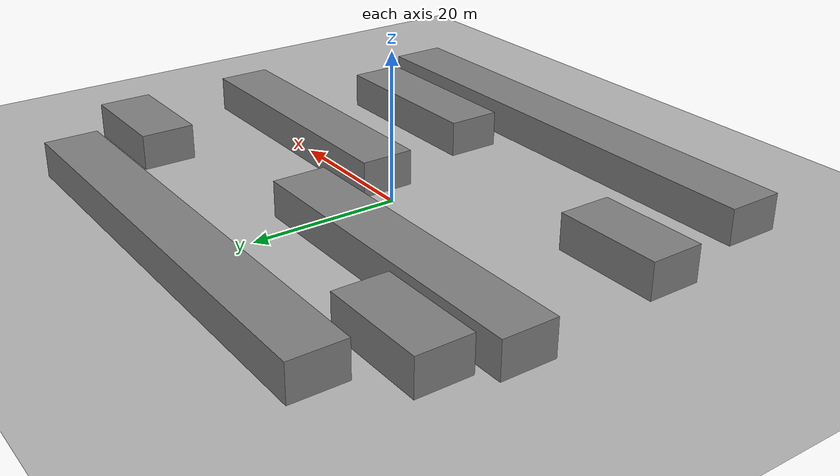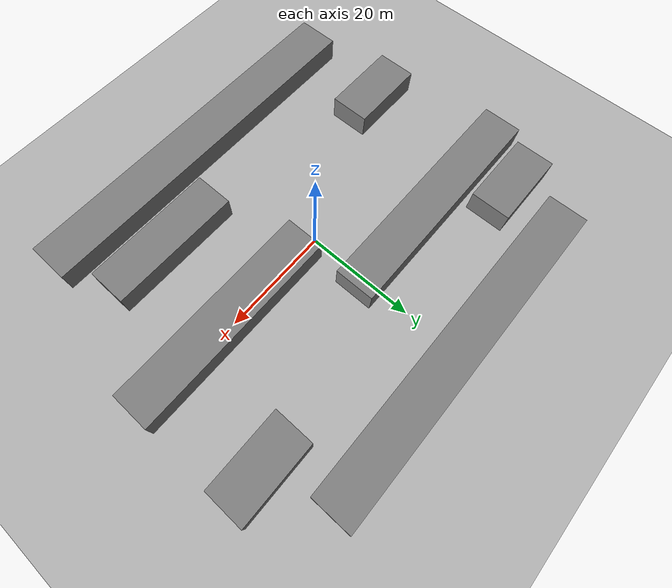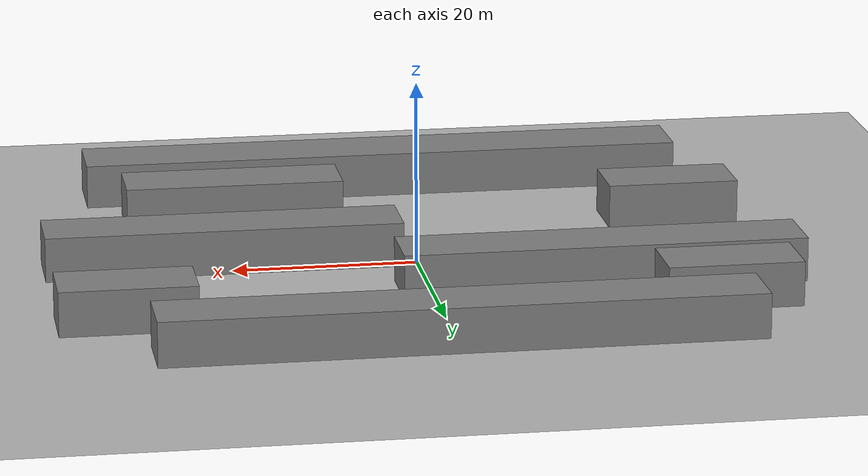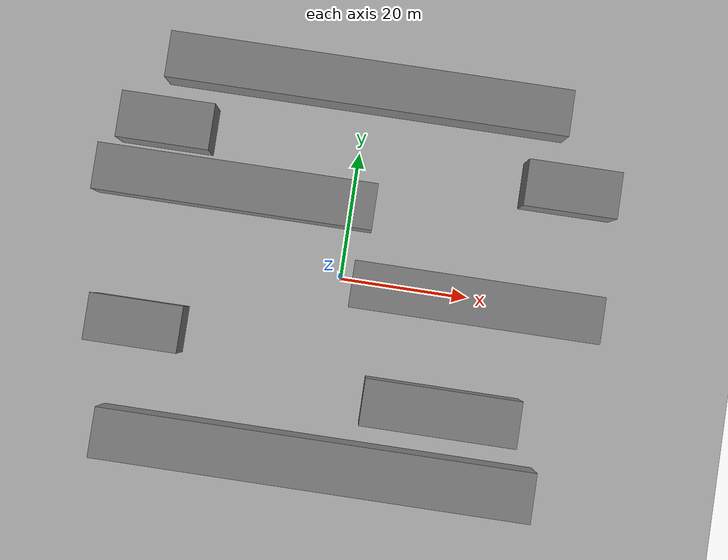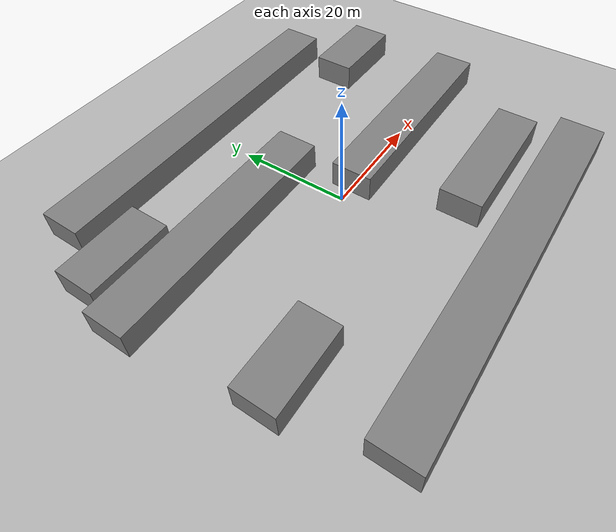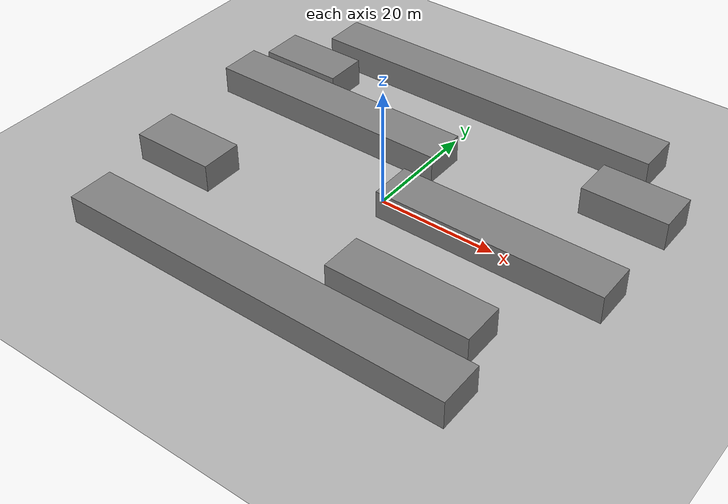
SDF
<?xml version="1.0" ?>
<sdf version='1.7'>
  <world name='default'>
    <light name='sun' type='directional'>
      <cast_shadows>1</cast_shadows>
      <pose>0 0 30 0 0 0</pose>
      <diffuse>0.8 0.8 0.8 1</diffuse>
      <specular>0.2 0.2 0.2 1</specular>
      <attenuation>
        <range>1000</range>
        <constant>0.9</constant>
        <linear>0.01</linear>
        <quadratic>0.001</quadratic>
      </attenuation>
      <direction>-0.5 0.1 -0.9</direction>
    </light>

    <model name='ground_plane'>
      <static>1</static>
      <link name='link'>
        <collision name='collision'>
          <geometry><plane><normal>0 0 1</normal><size>500 500</size></plane></geometry>
        </collision>
        <visual name='visual'>
          <cast_shadows>0</cast_shadows>
          <geometry><plane><normal>0 0 1</normal><size>500 500</size></plane></geometry>
          <material>
            <ambient>0.7 0.7 0.7 1</ambient>
            <diffuse>0.7 0.7 0.7 1</diffuse>
            <specular>0.2 0.2 0.2 1</specular>
          </material>
        </visual>
      </link>
    </model>

    <gravity>0 0 -9.8</gravity>
    <atmosphere type='adiabatic'/>
    <physics type='ode'>
      <max_step_size>0.004</max_step_size>
      <real_time_factor>1</real_time_factor>
      <real_time_update_rate>250</real_time_update_rate>
    </physics>

    <plugin filename="ignition-gazebo-physics-system" name="gz::sim::systems::Physics"/>
    <plugin filename="ignition-gazebo-sensors-system" name="gz::sim::systems::Sensors">
      <render_engine>ogre2</render_engine>
    </plugin>
    <plugin filename="ignition-gazebo-user-commands-system" name="gz::sim::systems::UserCommands"/>
    <plugin filename="ignition-gazebo-scene-broadcaster-system" name="gz::sim::systems::SceneBroadcaster"/>

    <scene>
      <ambient>0.4 0.4 0.4 1</ambient>
      <background>0.7 0.7 0.7 1</background>
      <shadows>1</shadows>
    </scene>

    <!-- (h) 近似：条形矩形障碍构成的通道/迷宫（整体 ~ 30m x 24m） -->
    <model name='arena_h'>
      <static>1</static>
      <pose>0 0 0 0 0 0</pose>

      <!-- horizontal slabs (整体放大 3 倍；去掉外边界围墙) -->
      <link name='slab_top'>
        <pose>0 30.0 3.0 0 0 0</pose>
        <collision name='collision'><geometry><box><size>62.4 7.2 4.8</size></box></geometry></collision>
        <visual name='visual'>
          <geometry><box><size>62.4 7.2 4.8</size></box></geometry>
          <material><ambient>0.5 0.5 0.5 1</ambient><diffuse>0.5 0.5 0.5 1</diffuse></material>
        </visual>
      </link>
      <link name='slab_mid_left'>
        <pose>-18.0 11.4 3.0 0 0 0</pose>
        <collision name='collision'><geometry><box><size>43.2 7.2 4.8</size></box></geometry></collision>
        <visual name='visual'>
          <geometry><box><size>43.2 7.2 4.8</size></box></geometry>
          <material><ambient>0.5 0.5 0.5 1</ambient><diffuse>0.5 0.5 0.5 1</diffuse></material>
        </visual>
      </link>
      <link name='slab_mid_right'>
        <pose>21.0 -0.6 3.0 0 0 0</pose>
        <collision name='collision'><geometry><box><size>38.4 7.2 4.8</size></box></geometry></collision>
        <visual name='visual'>
          <geometry><box><size>38.4 7.2 4.8</size></box></geometry>
          <material><ambient>0.5 0.5 0.5 1</ambient><diffuse>0.5 0.5 0.5 1</diffuse></material>
        </visual>
      </link>
      <link name='slab_bottom'>
        <pose>0 -28.5 3.0 0 0 0</pose>
        <collision name='collision'><geometry><box><size>67.2 7.68 4.8</size></box></geometry></collision>
        <visual name='visual'>
          <geometry><box><size>67.2 7.68 4.8</size></box></geometry>
          <material><ambient>0.5 0.5 0.5 1</ambient><diffuse>0.5 0.5 0.5 1</diffuse></material>
        </visual>
      </link>

      <!-- additional blocks to shape the turns -->
      <link name='block_01'>
        <pose>-30.0 19.8 3.0 0 0 0</pose>
        <collision name='collision'><geometry><box><size>14.4 7.2 4.8</size></box></geometry></collision>
        <visual name='visual'>
          <geometry><box><size>14.4 7.2 4.8</size></box></geometry>
          <material><ambient>0.5 0.5 0.5 1</ambient><diffuse>0.5 0.5 0.5 1</diffuse></material>
        </visual>
      </link>
      <link name='block_02'>
        <pose>33.0 18.6 3.0 0 0 0</pose>
        <collision name='collision'><geometry><box><size>14.4 7.2 4.8</size></box></geometry></collision>
        <visual name='visual'>
          <geometry><box><size>14.4 7.2 4.8</size></box></geometry>
          <material><ambient>0.5 0.5 0.5 1</ambient><diffuse>0.5 0.5 0.5 1</diffuse></material>
        </visual>
      </link>
      <link name='block_03'>
        <pose>-30.0 -11.4 3.0 0 0 0</pose>
        <collision name='collision'><geometry><box><size>14.4 7.2 4.8</size></box></geometry></collision>
        <visual name='visual'>
          <geometry><box><size>14.4 7.2 4.8</size></box></geometry>
          <material><ambient>0.5 0.5 0.5 1</ambient><diffuse>0.5 0.5 0.5 1</diffuse></material>
        </visual>
      </link>
      <link name='block_04'>
        <pose>18.0 -18.0 3.0 0 0 0</pose>
        <collision name='collision'><geometry><box><size>24 7.2 4.8</size></box></geometry></collision>
        <visual name='visual'>
          <geometry><box><size>24 7.2 4.8</size></box></geometry>
          <material><ambient>0.5 0.5 0.5 1</ambient><diffuse>0.5 0.5 0.5 1</diffuse></material>
        </visual>
      </link>
    </model>

    <gui fullscreen='0'>
      <camera name='user_camera'>
        <pose>-96 0 60 0 0.7 0</pose>
        <view_controller>orbit</view_controller>
        <projection_type>perspective</projection_type>
      </camera>
    </gui>
  </world>
</sdf>
